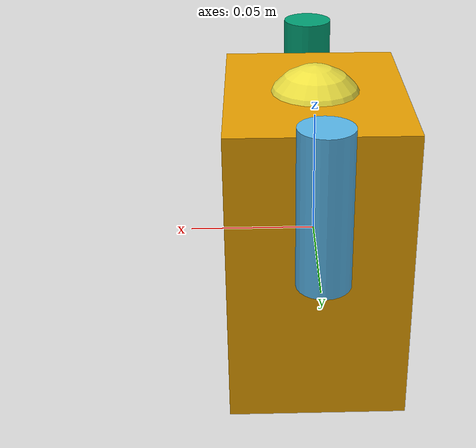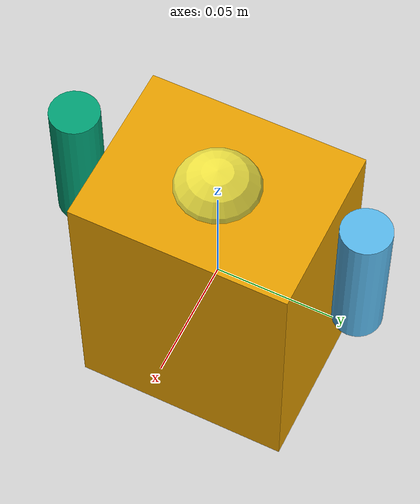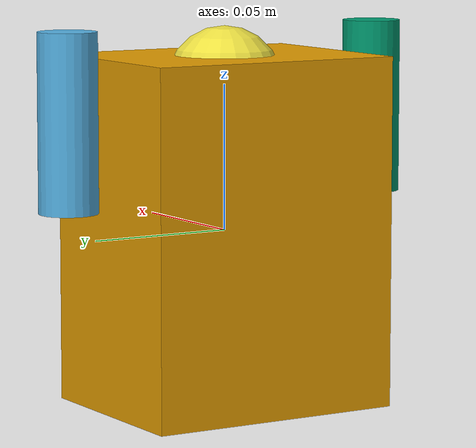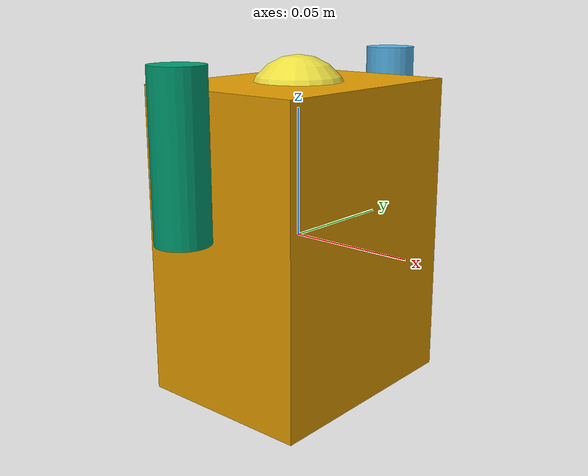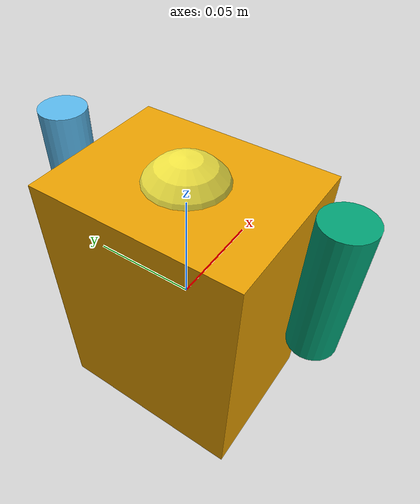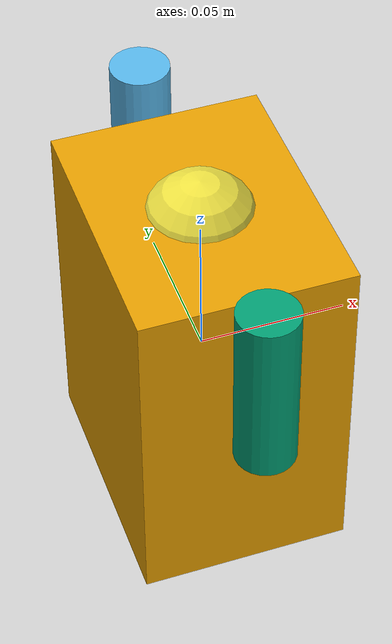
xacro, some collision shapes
<?xml version="1.0"?>

<robot xmlns:xacro="http://www.ros.org/wiki/xacro" name="my_robot">

    <xacro:include filename="$(find tutorial)/urdf/arm.xacro" />
    <xacro:include filename="$(find tutorial)/urdf/head.xacro" />

    <link name="base_link">
        <visual>
            <geometry>
                <box size=".07 .09 .12"/>
            </geometry>
        </visual>
        <collision>
            <geometry>
                <box size=".07 .09 .12"/>
            </geometry>
        </collision>
        <inertial>
            <mass value="1"/>
            <inertia ixx="0.21" ixy="0.00" ixz="0.00" iyy="0.27" iyz="0.00" izz="0.10"/>
        </inertial>
    </link>

    <xacro:arm prefix="right" length="0.06" radius="0.01" reflect="1" />
    <xacro:arm prefix="left" length="0.06" radius="0.01" reflect="-1" />
    <xacro:head />

    <!-- Add ROS plugin so we can interact with our robot -->
    <gazebo>
        <plugin name="gazebo_ros_control" filename="libgazebo_ros_control.so">
            <robotNamespace>/</robotNamespace>
        </plugin>
    </gazebo>
</robot>

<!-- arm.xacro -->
<robot xmlns:xacro="http://www.ros.org/wiki/xacro" name="my_robot">
<xacro:macro name="arm" params="prefix radius length reflect">

    <link name="${prefix}_arm">
        <visual>
            <origin rpy="0 0 0" xyz="0 0 0.04"/>
            <geometry>
                <cylinder length="${length}" radius="${radius}"/>
            </geometry>
        </visual>
        <collision>
            <geometry>
                <cylinder length="${length}" radius="${radius}"/>
            </geometry>
        </collision>
        <inertial>
            <mass value="1"/>
            <inertia ixx="0.06" ixy="0.0" ixz="0.0" iyy="0.06" iyz="0.0" izz="0.25"/>
        </inertial>
    </link>

    <joint name="base_to_${prefix}_arm" type="continuous">
        <axis xyz="0 1 0"/>
        <parent link="base_link"/>
        <child link="${prefix}_arm"/>
        <origin rpy="0 0 0" xyz="0 ${0.06*reflect} 0.0"/>
        <limit effort="30" velocity="1.0"/>
    </joint>

    <transmission name="${prefix}_arm_transmission">
        <type>transmission_interface/SimpleTransmission</type>
        <actuator name="$${prefix}_motor">
            <mechanicalReduction>1</mechanicalReduction>
        </actuator>
        <joint name="base_to_${prefix}_arm">
            <hardwareInterface>hardware_interface/VelocityJointInterface</hardwareInterface>
        </joint>
    </transmission>

</xacro:macro>
</robot>

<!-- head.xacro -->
<robot xmlns:xacro="http://www.ros.org/wiki/xacro" name="my_robot">
<xacro:macro name="head">

    <link name="head_link">
        <visual>
            <geometry>
                <mesh filename="package://tutorial/urdf/head.dae" scale=".5 .5 .5"/>
            </geometry>
        </visual>
        <collision>
            <geometry>
                <sphere radius="0.02"/>
            </geometry>
        </collision>
        <inertial>
            <mass value="0.10"/>
            <inertia ixx="0.03" ixy="0.0" ixz="0.0" iyy="0.03" iyz="0.0" izz="0.03"/>
        </inertial>
    </link>

    <joint name="base_to_head" type="continuous">
        <axis xyz="0 0 1"/>
        <parent link="base_link"/>
        <child link="head_link"/>
        <origin rpy="0 0 0" xyz="0 0 0.05"/>
        <limit effort="30" velocity="1.0"/>
    </joint>

    <transmission name="head_transmission">
        <type>transmission_interface/SimpleTransmission</type>
        <actuator name="$head_motor">
            <mechanicalReduction>1</mechanicalReduction>
        </actuator>
        <joint name="base_to_head">
            <hardwareInterface>hardware_interface/PositionJointInterface</hardwareInterface>
        </joint>
    </transmission>

</xacro:macro>
</robot>
